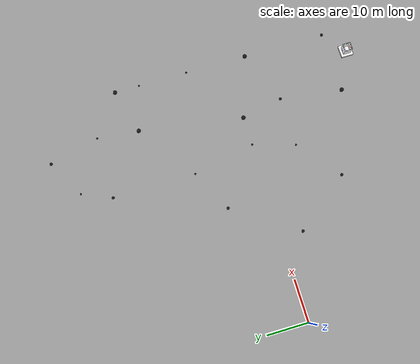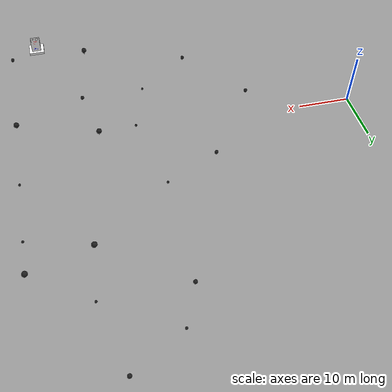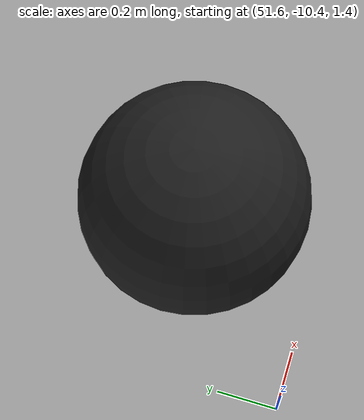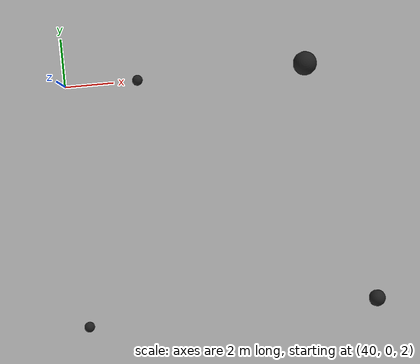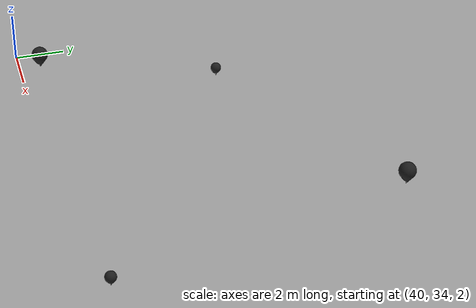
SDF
<sdf version="1.4">
 <world name="SandIsland">
  <scene><sky><clouds><speed>12</speed></clouds></sky></scene>
  <wind><linear_velocity>10 0 0</linear_velocity></wind>
  <include><uri>model://sun</uri></include>
  <include><name>buoy_a3_1</name><pose>40 15 2 0 0 0</pose><uri>model://models/buoy_a3</uri></include>
  <include><name>buoy_a3_2</name><pose>43 42 2 0 0 0</pose><uri>model://models/buoy_a3</uri></include>
  <include><name>buoy_a3_3</name><pose>65 22 2 0 0 0</pose><uri>model://models/buoy_a3</uri></include>
  <include><name>buoy_a3_4</name><pose>55 35 2 0 0 0</pose><uri>model://models/buoy_a3</uri></include>
  <include><name>buoy_a3_6</name><pose>43 0 2 0 0 0</pose><uri>model://models/buoy_a3</uri></include>
  <include><name>buoy_a3_7</name><pose>65 10 2 0 0 0</pose><uri>model://models/buoy_a3</uri></include>
  <include><name>buoy_a3_8</name><pose>40 -10 2 0 0 0</pose><uri>model://models/buoy_a3</uri></include>
  <include><name>buoy_a5_1</name><pose>40 35 2 0 0 0</pose><uri>model://models/buoy_a5</uri></include>
  <include><name>buoy_a5_2</name><pose>30 10 2 0 0 0</pose><uri>model://models/buoy_a5</uri></include>
  <include><name>buoy_a5_3</name><pose>30 -18 2 0 0 0</pose><uri>model://models/buoy_a5</uri></include>
  <include><name>buoy_a5_4</name><pose>52 47 2 0 0 0</pose><uri>model://models/buoy_a5</uri></include>
  <include><name>buoy_a5_5</name><pose>20 -5 2 0 0 0</pose><uri>model://models/buoy_a5</uri></include>
  <include><name>buoy_a5_6</name><pose>65 -25 2 0 0 0</pose><uri>model://models/buoy_a5</uri></include>
  <include><name>buoy_a5_7</name><pose>52 -10 2 0 0 0</pose><uri>model://models/buoy_a5</uri></include>
  <include><name>buoy_a7_1</name><pose>54 25 2 0 0 0</pose><uri>model://models/buoy_a7</uri></include>
  <include><name>buoy_a7_2</name><pose>65 28 2 0 0 0</pose><uri>model://models/buoy_a7</uri></include>
  <include><name>buoy_a7_3</name><pose>50 0 2 0 0 0</pose><uri>model://models/buoy_a7</uri></include>
  <include><name>buoy_a7_4</name><pose>50 -25 2 0 0 0</pose><uri>model://models/buoy_a7</uri></include>
  <include><name>buoy_a7_5</name><pose>65 -5 2 0 0 0</pose><uri>model://models/buoy_a7</uri></include>
  <include><pose>60 -30 0 0 0 0</pose><uri>model://models/deliever_buoy</uri></include>
 </world>
</sdf>

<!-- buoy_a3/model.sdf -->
<sdf version="1.4">
  <model name="buoy_a3">
    <link name="link">
      <pose>0 0 0 0 0 0</pose>
      <collision name="collision">
        <geometry>
          <mesh>
            <uri>model://buoy_a3/meshes/a3.dae</uri>
          </mesh>
        </geometry>
      </collision>
      <visual name="visual">
        <cast_shadows>false</cast_shadows>
        <geometry>
          <mesh>
            <uri>model://buoy_a3/meshes/a3.dae</uri>
          </mesh>
        </geometry>
        <material>
          <script>
            <uri>file://media/materials/scripts/gazebo.material</uri>
            <name>Gazebo/Black</name>
          </script>
        </material>
      </visual>
      <inertial>
      	<origin
        xyz="0 0 -5"
        rpy="0 0 0" />
        <mass>10</mass>
        <inertia>
          <ixx>10</ixx>
          <ixy>0</ixy>
          <ixz>0</ixz>
          <iyy>10</iyy>
          <iyz>0</iyz>
          <izz>10</izz>
        </inertia>
      </inertial>
    </link>
    <plugin name="BuoyancyPlugin" filename="libbuoyancy_gazebo_plugin.so">
      <fluid_density>1000</fluid_density>
      <fluid_level>0.08</fluid_level>
      <fluid_drag>50</fluid_drag>
      <link>
        <name>link</name>
        <center_of_volume>0 0 0.1</center_of_volume>
        <area>0.1</area>
        <height>0.5</height>
      </link>
    </plugin>
  </model>
</sdf>

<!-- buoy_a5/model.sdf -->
<sdf version="1.4">
  <model name="buoy_a5">
    <link name="link">
      <pose>0 0 0 0 0 0</pose>
      <collision name="collision">
        <geometry>
          <mesh>
            <uri>model://buoy_a5/meshes/a5.dae</uri>
          </mesh>
        </geometry>
      </collision>
      <visual name="visual">
        <cast_shadows>false</cast_shadows>
        <geometry>
          <mesh>
            <uri>model://buoy_a5/meshes/a5.dae</uri>
          </mesh>
        </geometry>
        <material>
          <script>
            <uri>file://media/materials/scripts/gazebo.material</uri>
            <name>Gazebo/Black</name>
          </script>
        </material>
      </visual>
      <inertial>
      	<origin
        xyz="0 0 -5"
        rpy="0 0 0" />
        <mass>10</mass>
        <inertia>
          <ixx>10</ixx>
          <ixy>0</ixy>
          <ixz>0</ixz>
          <iyy>10</iyy>
          <iyz>0</iyz>
          <izz>10</izz>
        </inertia>
      </inertial>
    </link>
    <plugin name="BuoyancyPlugin" filename="libbuoyancy_gazebo_plugin.so">
      <fluid_density>1000</fluid_density>
      <fluid_level>0.2</fluid_level>
      <fluid_drag>50</fluid_drag>
      <link>
        <name>link</name>
        <center_of_volume>0 0 0.1</center_of_volume>
        <area>0.1</area>
        <height>0.5</height>
      </link>
    </plugin>S
  </model>
</sdf>

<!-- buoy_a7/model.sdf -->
<sdf version="1.4">
  <model name="buoy_a7">
    <link name="link">
      <pose>0 0 0 0 0 0</pose>
      <collision name="collision">
        <geometry>
          <mesh>
            <uri>model://buoy_a7/meshes/a7.dae</uri>
          </mesh>
        </geometry>
      </collision>
      <visual name="visual">
        <cast_shadows>false</cast_shadows>
        <geometry>
          <mesh>
            <uri>model://buoy_a7/meshes/a7.dae</uri>
          </mesh>
        </geometry>
        <material>
          <script>
            <uri>file://media/materials/scripts/gazebo.material</uri>
            <name>Gazebo/Black</name>
          </script>
        </material>
      </visual>
      <inertial>
      	<origin
        xyz="0 0 -5"
        rpy="0 0 0" />
        <mass>10</mass>
        <inertia>
          <ixx>10</ixx>
          <ixy>0</ixy>
          <ixz>0</ixz>
          <iyy>10</iyy>
          <iyz>0</iyz>
          <izz>10</izz>
        </inertia>
      </inertial>
    </link>
    <plugin name="BuoyancyPlugin" filename="libbuoyancy_gazebo_plugin.so">
      <fluid_density>1000</fluid_density>
      <fluid_level>0.25</fluid_level>
      <fluid_drag>50</fluid_drag>
      <link>
        <name>link</name>
        <center_of_volume>0 0 0.1</center_of_volume>
        <area>0.1</area>
        <height>0.5</height>
      </link>
    </plugin>
  </model>
</sdf>

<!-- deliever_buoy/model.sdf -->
<sdf version="1.4">
  <model name="deliever_buoy">
    <gazebo>
      <static>false</static>
    </gazebo>
    <link name="link">
      <pose>0 0 0 0 0 0</pose>
      <collision name="collision">
        <geometry>
          <mesh>
            <uri>model://deliever_buoy/meshes/detect_and_deliever.dae</uri>
          </mesh>
        </geometry>
      </collision>
      <visual name="visual">
        <geometry>
          <mesh>
            <uri>model://deliever_buoy/meshes/detect_and_deliever.dae</uri>
          </mesh>
        </geometry>
        <material>
          <lighting>1</lighting>
        </material>
      </visual>
      <inertial>
      	<origin
        xyz="0 0 0"
        rpy="0 0 0" />
        <mass>10</mass>
        <inertia>
          <ixx>10</ixx>
          <ixy>0</ixy>
          <ixz>0</ixz>
          <iyy>10</iyy>
          <iyz>0</iyz>
          <izz>10</izz>
        </inertia>
      </inertial>
    </link>
    <plugin name="BuoyancyPlugin" filename="libbuoyancy_gazebo_plugin.so">
      <fluid_density>1000</fluid_density>
      <fluid_level>0.0</fluid_level>
      <fluid_drag>50</fluid_drag>
      <link>
        <name>link</name>
        <center_of_volume>0 0 0.1</center_of_volume>
        <area>0.1</area>
        <height>0.3</height>
      </link>
    </plugin>
  </model>
</sdf>
